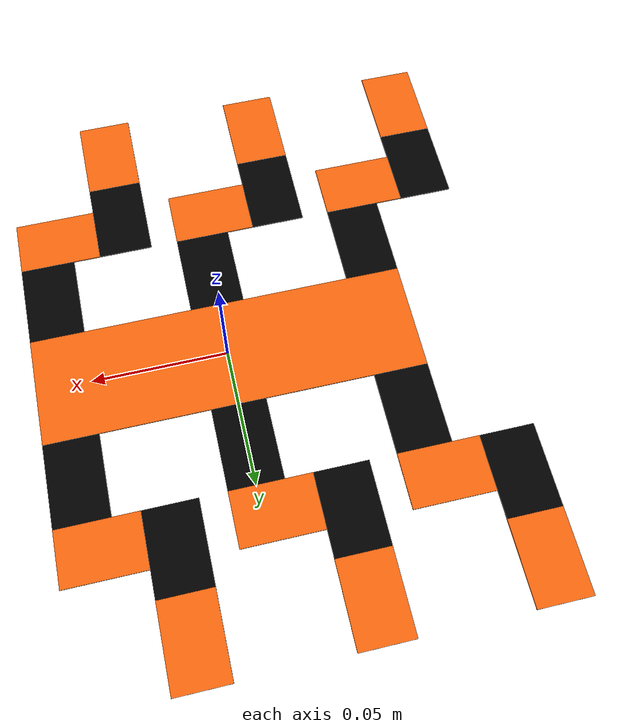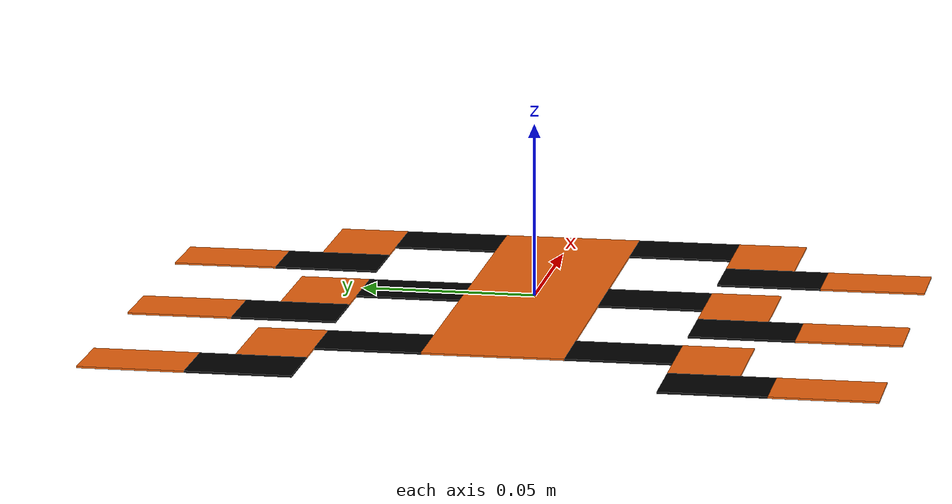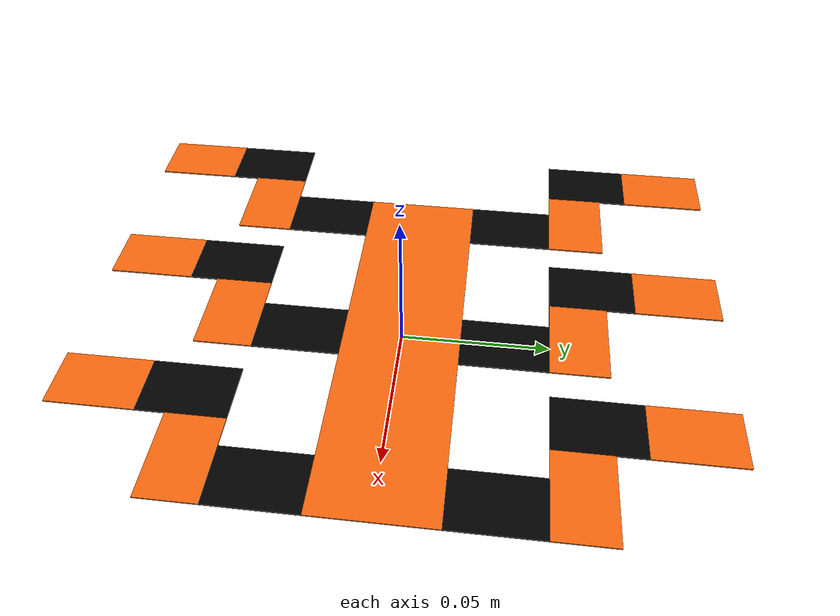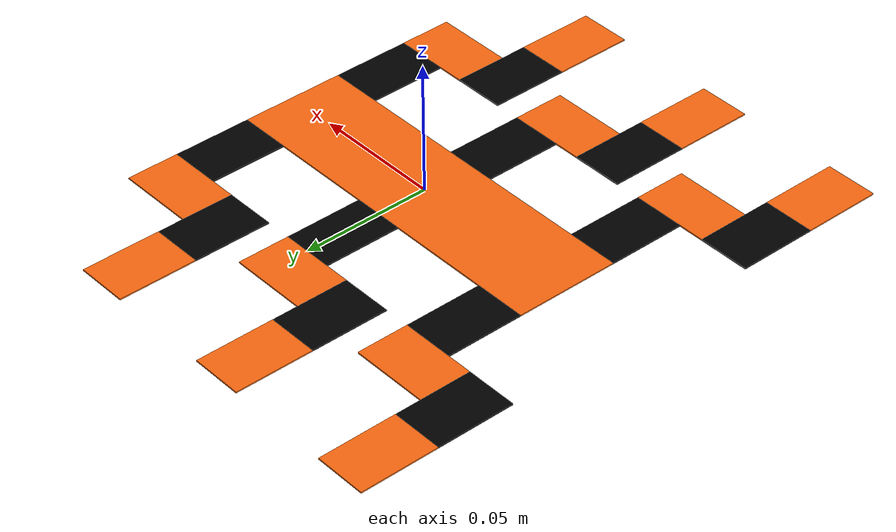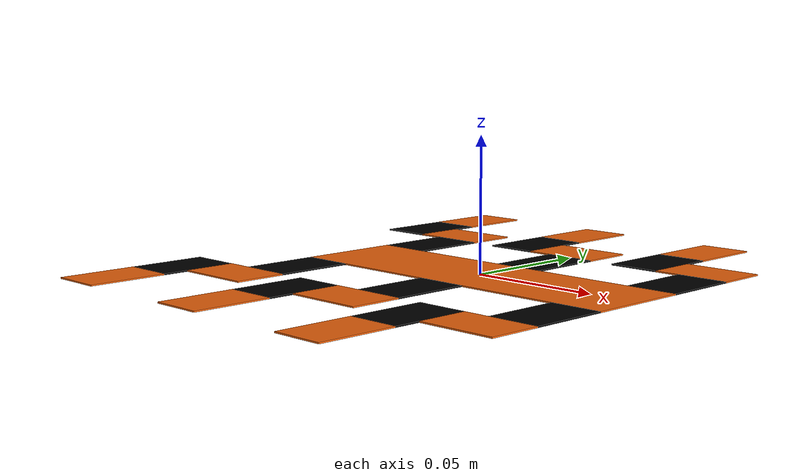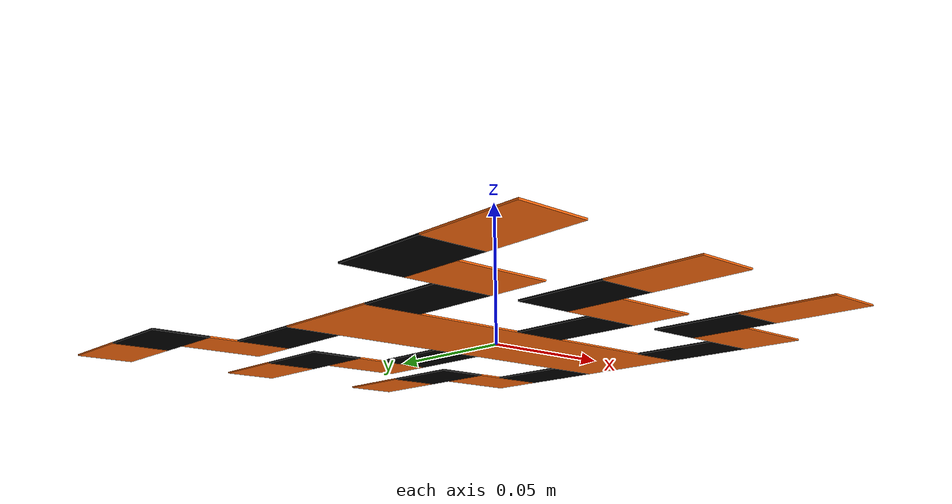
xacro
<?xml version="1.0"?>
<robot name="millihex" xmlns:xacro="http://www.ros.org/wiki/xacro">

    <!-- Physical Properties -->
    <!-- Torso mass and x,y dimensions -->
    <xacro:property name="torso_mass" value="0.01" />
    <xacro:property name="torso_x" value="0.14" />
    <xacro:property name="torso_y" value="0.04" />

    <!-- Leg mass and x,y dimensions -->
    <xacro:property name="leg_link_mass" value="0.0008" />
    <xacro:property name="leg_link_x" value="0.02" />
    <xacro:property name="leg_link_y" value="0.03" />

    <!-- Joint limits -->
    <xacro:property name="joint_upper_limit" value="1.5708" />
    <xacro:property name="joint_lower_limit" value="-1.5708" />
    <xacro:property name="joint_effort_limit" value="0.01" />
    <xacro:property name="joint_velocity_limit" value="0.01" />

    <!-- Joint damping (b) and friction (k) -->
    <xacro:property name="joint_damping" value="0.00003" />
    <xacro:property name="joint_friction" value="0.001" />

    <!-- PCB thickness -->
    <xacro:property name="pcb_thickness_z" value="0.0005" />

    <!-- Link Gazebo properties -->
    <!-- Contact stiffness (kp) -->
    <!-- Contact damping (kp) -->
    <xacro:property name="link_kp" value="1000.0" />
    <xacro:property name="link_kd" value="1000.0" />

    <!-- Link coulomb friction coefficients in direction 1,2 -->
    <!-- mu = [0, inf] where higher mu means less slip -->
    <xacro:property name="link_mu1" value="5.0" />
    <xacro:property name="link_mu2" value="5.0" />

    <!-- Color Definitions -->
    <material name="Black">
        <color rgba="0 0 0 1" />
    </material>

    <material name="Orange">
        <color rgba="0.98 0.41 0.055 1" />
    </material>

    <!-- Calculate Moment of Inertia of a Box -->
    <xacro:macro name="box_inertia" params="mass x y z">
        <inertia ixx="${mass*(y*y+z*z)/12}" ixy = "0" ixz = "0"
            iyy="${mass*(x*x+z*z)/12}" iyz = "0" izz="${mass*(x*x+y*y)/12}" />
    </xacro:macro>

    <!-- Base and Torso Definition -->
    <xacro:macro name="millihex_torso" params="color">
        <!-- Dummy link to support KDL -->
        <link name="base_link" />

        <!-- Torso geometry without legs -->
        <link name="torso">
            <inertial>
                <origin xyz="0 0 ${pcb_thickness_z / 2}" rpy="0 0 0" />
                <mass value="${torso_mass}" />
                <xacro:box_inertia mass="${torso_mass}" x="${torso_x}"
                    y="${torso_y}" z="${pcb_thickness_z}" />
            </inertial>
            <collision>
                <origin xyz="0 0 0" rpy="0 0 0" />
                <geometry>
                    <box size="${torso_x} ${torso_y} ${pcb_thickness_z}" />
                </geometry>
            </collision>
            <visual>
                <origin xyz="0 0 0" rpy="0 0 0" />
                <geometry>
                    <box size="${torso_x} ${torso_y} ${pcb_thickness_z}" />
                </geometry>
                <material name="${color}" />
            </visual>
        </link>

        <!-- Gazebo properties -->
        <gazebo reference="torso">
            <kp>${link_kp}</kp>
            <kd>${link_kd}</kd>
            <mu1>${link_mu1}</mu1>
            <mu2>${link_mu2}</mu2>
            <material>Gazebo/${color}</material>
        </gazebo>

        <!-- Join Base Link and Torso -->
        <joint name="base_joint" type="fixed">
            <parent link="base_link" />
            <child link="torso" />
        </joint>
    </xacro:macro>

    <!-- Leg Link Definition -->
    <xacro:macro name="millihex_leg_link"
        params="leg_number link_number x_length y_length color">
        <!-- Leg geometry -->
        <link name="leg${leg_number}_link${link_number}">
            <inertial>
                <origin xyz="0 0 ${pcb_thickness_z / 2}" rpy="0 0 0" />
                <mass value="${leg_link_mass}" />
                <xacro:box_inertia mass="${leg_link_mass}" x="${x_length}"
                    y="${y_length}" z="${pcb_thickness_z}" />
            </inertial>
            <collision>
                <origin xyz="-${x_length / 2} -${y_length / 2} 0" rpy="0 0 0" />
                <geometry>
                    <box size="${x_length} ${y_length} ${pcb_thickness_z}" />
                </geometry>
            </collision>
            <visual>
                <origin xyz="-${x_length / 2} -${y_length / 2} 0" rpy="0 0 0" />
                <geometry>
                    <box size="${x_length} ${y_length} ${pcb_thickness_z}" />
                </geometry>
                <material name="${color}"/>
            </visual>
        </link>

        <!-- Gazebo properties -->
        <gazebo reference="leg${leg_number}_link${link_number}">
            <kp>${link_kp}</kp>
            <kd>${link_kd}</kd>
            <mu1>${link_mu1}</mu1>
            <mu2>${link_mu2}</mu2>
            <material>Gazebo/${color}</material>
        </gazebo>
    </xacro:macro>

    <!-- Leg Joint Transmission -->
    <xacro:macro name="leg_transmission" params="leg_number joint_number">
        <transmission name="leg${leg_number}_joint${joint_number}_tran">
            <type>transmission_interface/SimpleTransmission</type>
            <joint name="leg${leg_number}_joint${joint_number}">
                <hardwareInterface>
                    hardware_interface/EffortJointInterface
                </hardwareInterface>
            </joint>
            <actuator name="leg${leg_number}_joint${joint_number}_motor">
                <hardwareInterface>
                    hardware_interface/EffortJointInterface
                </hardwareInterface>
                <mechanicalReduction>1</mechanicalReduction>
            </actuator>
        </transmission>
    </xacro:macro>

    <!-- Assemble Leg -->
    <xacro:macro name="millihex_leg" params="leg_number">
        <!-- Link 0 (shoulder link), horizontally oriented -->
        <xacro:millihex_leg_link leg_number="${leg_number}" link_number="0"
            x_length="${leg_link_x}" y_length="${leg_link_y}" color="Black" />

        <!-- Link 1, vertically oriented -->
        <xacro:millihex_leg_link leg_number="${leg_number}" link_number="1"
            x_length="${leg_link_y}" y_length="${leg_link_x}" color="Orange" />

        <joint name="leg${leg_number}_joint1" type="revolute">
            <parent link="leg${leg_number}_link0" />
            <child link="leg${leg_number}_link1" />
            <origin xyz="0 -${leg_link_y} 0" rpy="0 0 0" />
            <dynamics damping="${joint_damping}" friction="${joint_friction}" />
            <limit lower="${joint_lower_limit}"
                   upper="${joint_upper_limit}"
                   effort="${joint_effort_limit}"
                   velocity="${joint_velocity_limit}" />
            <axis xyz="1 0 0" />
        </joint>

        <xacro:leg_transmission leg_number="${leg_number}" joint_number="1" />

        <!-- Link 2, horizontally oriented -->
        <xacro:millihex_leg_link leg_number="${leg_number}" link_number="2"
            x_length="${leg_link_x}" y_length="${leg_link_y}" color="Black" />

        <joint name="leg${leg_number}_joint2" type="revolute">
            <parent link="leg${leg_number}_link1" />
            <child link="leg${leg_number}_link2" />
            <origin xyz="-${leg_link_y} 0 0" rpy="0 0 0" />
            <dynamics damping="${joint_damping}" friction="${joint_friction}" />
            <limit lower="${joint_lower_limit}"
                   upper="${joint_upper_limit}"
                   effort="${joint_effort_limit}"
                   velocity="${joint_velocity_limit}" />
            <axis xyz="0 -1 0" />
        </joint>

        <xacro:leg_transmission leg_number="${leg_number}" joint_number="2" />

        <!-- Link 3, horizontally oriented -->
        <xacro:millihex_leg_link leg_number="${leg_number}" link_number="3"
            x_length="${leg_link_x}" y_length="${leg_link_y}" color="Orange" />

        <joint name="leg${leg_number}_joint3" type="revolute">
            <parent link="leg${leg_number}_link2" />
            <child link="leg${leg_number}_link3" />
            <origin xyz="0 -${leg_link_y} 0" rpy="0 0 0" />
            <dynamics damping="${joint_damping}" friction="${joint_friction}" />
            <limit lower="${joint_lower_limit}"
                   upper="${joint_upper_limit}"
                   effort="${joint_effort_limit}"
                   velocity="${joint_velocity_limit}" />
            <axis xyz="1 0 0" />
        </joint>

        <xacro:leg_transmission leg_number="${leg_number}" joint_number="3" />

    </xacro:macro>

    <!-- Assemble Body -->
    <xacro:macro name="millihex_body" params="">
        <!-- Call Torso xacro -->
        <xacro:millihex_torso color="Orange" />

        <!-- Leg 1-->
        <xacro:millihex_leg leg_number="1" />
        <!-- Leg 1, Joint 0 (fixed, shoulder joint)-->
        <joint name="leg1_joint0" type="fixed">
            <parent link="torso" />
            <child link="leg1_link0" />
            <origin xyz="${torso_x / 2} -${torso_y / 2} 0" rpy="0 0 0" />
        </joint>

        <!-- Leg 2 -->
        <xacro:millihex_leg leg_number="2" />
        <!-- Leg 2, Joint 0 (fixed, shoulder joint) -->
        <joint name="leg2_joint0" type="fixed">
            <parent link="torso" />
            <child link="leg2_link0" />
            <origin xyz="${leg_link_x / 2} -${torso_y / 2} 0" rpy="0 0 0" />
        </joint>

        <!-- Leg 3 -->
        <xacro:millihex_leg leg_number="3" />
        <!-- Leg 3, Joint 0 (fixed, shoulder joint) -->
        <joint name="leg3_joint0" type="fixed">
            <parent link="torso" />
            <child link="leg3_link0" />
            <origin xyz="-${torso_x / 2 - leg_link_x} -${torso_y / 2} 0"
                rpy="0 0 0" />
        </joint>

        <!-- Leg 4 -->
        <xacro:millihex_leg leg_number="4" />
        <!-- Leg 4, Joint 0 (fixed, shoulder joint) -->
        <joint name="leg4_joint0" type="fixed">
            <parent link="torso" />
            <child link="leg4_link0" />
            <origin xyz="${torso_x / 2} ${torso_y / 2} 0" rpy="3.1416 0 0" />
        </joint>

        <!-- Leg 5 -->
        <xacro:millihex_leg leg_number="5" />
        <!-- Leg 5, Joint 0 (fixed, shoulder joint) -->
        <joint name="leg5_joint0" type="fixed">
            <parent link="torso" />
            <child link="leg5_link0" />
            <origin xyz="${leg_link_x / 2} ${torso_y / 2} 0" rpy="3.1416 0 0" />
        </joint>

        <!-- Leg 6 -->
        <xacro:millihex_leg leg_number="6" />
        <!-- Leg 6, Joint 0 (fixed, shoulder joint) -->
        <joint name="leg6_joint0" type="fixed">
            <parent link="torso" />
            <child link="leg6_link0" />
            <origin xyz="-${torso_x / 2 - leg_link_x} ${torso_y / 2} 0"
                rpy="3.1416 0 0" />
        </joint>

    </xacro:macro>

    <!-- Add Gazebo Control Library -->
    <xacro:macro name="millihex_control" params="namespace">
        <gazebo>
            <plugin name="gazebo_ros_control" filename="libgazebo_ros_control.so">
                <robotNamespace>/${namespace}</robotNamespace>
            </plugin>
        </gazebo>
    </xacro:macro>

    <!-- Build Robot by Filling in Macro Parameters -->
    <xacro:millihex_body />

    <xacro:millihex_control namespace="millihex" />

</robot>
